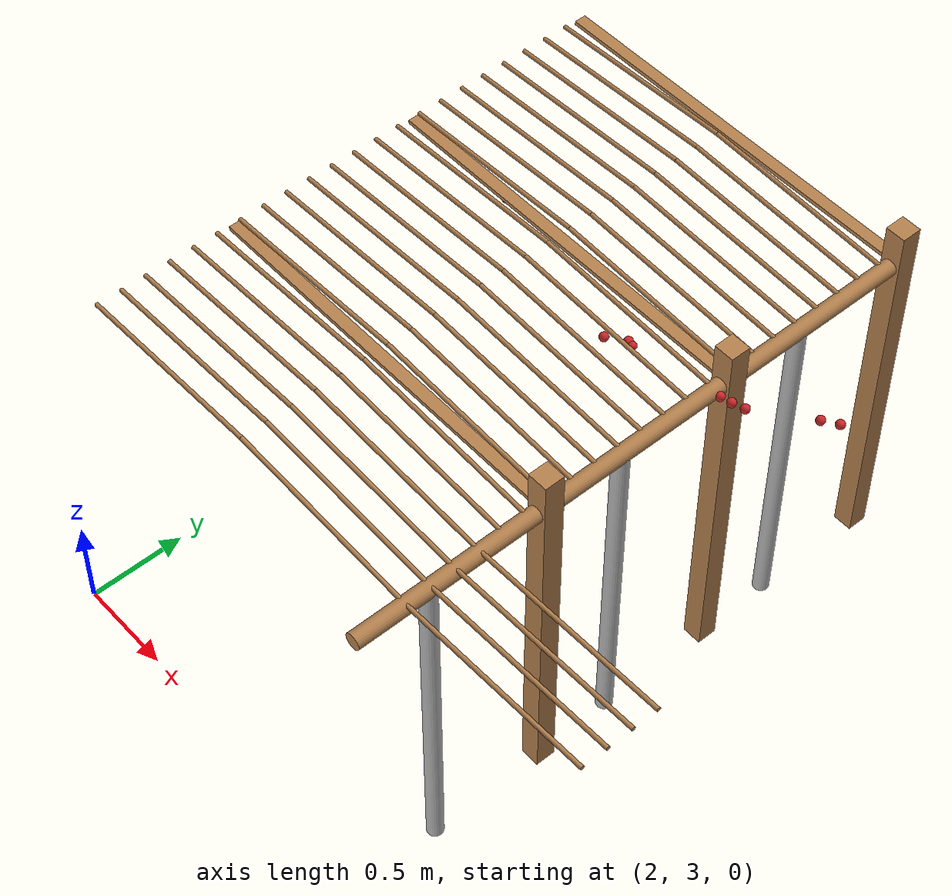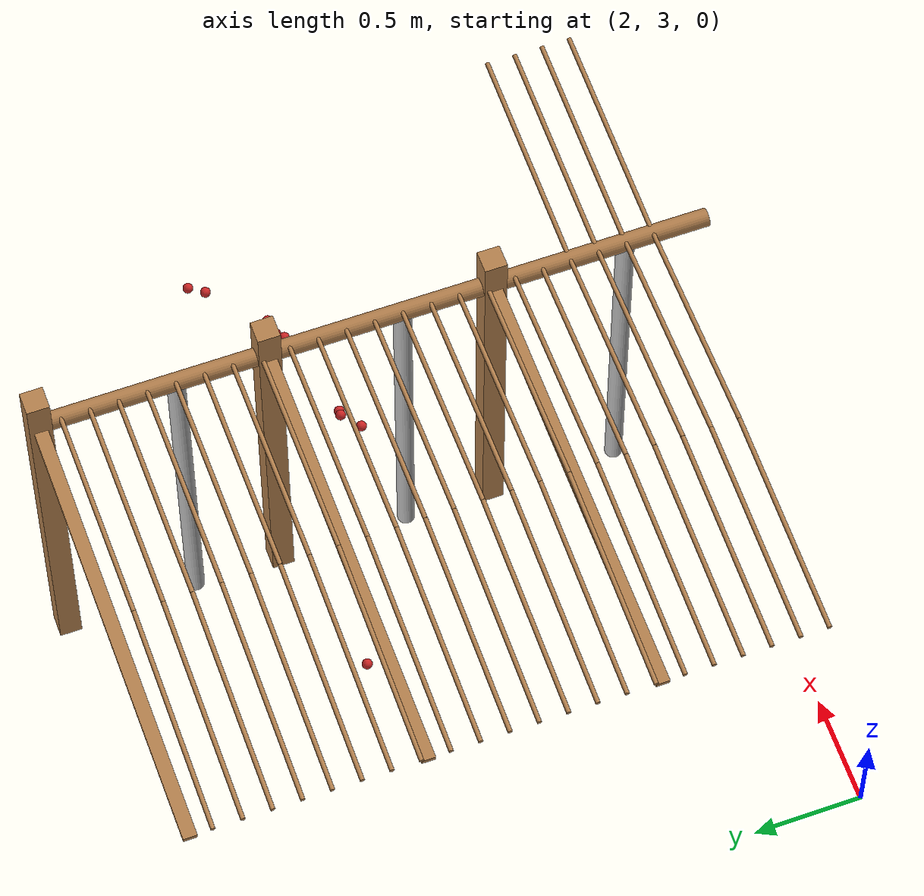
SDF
<sdf version="1.4">
 <model name="pergola">
  <include><name>post_18</name><pose>4.0 4.0 0 0 0 0</pose><uri>model://post</uri></include>
  <include><name>post_19</name><pose>4.0 5.0 0 0 0 0</pose><uri>model://post</uri></include>
  <include><name>post_20</name><pose>4.0 6.0 0 0 0 0</pose><uri>model://post</uri></include>
  <link name="beam_11">
   <pose>3.0 4.0 1.81 0 0 0</pose>
   <collision name="collision"><geometry><box><size>2.0 0.06 0.02</size></box></geometry></collision>
   <visual name="visual">
    <geometry><box><size>2.0 0.06 0.02</size></box></geometry>
    <material><script><name>Gazebo/Wood</name></script></material>
   </visual>
   <inertial>
    <mass>5</mass>
    <inertia>
     <ixx>0.0016666666666666668</ixx>
     <ixy>0.0</ixy>
     <ixz>0.0</ixz>
     <iyy>1.6681666666666664</iyy>
     <iyz>0.0</iyz>
     <izz>1.6668333333333332</izz>
    </inertia>
   </inertial>
  </link>
  <link name="beam_12">
   <pose>3.0 5.0 1.81 0 0 0</pose>
   <collision name="collision"><geometry><box><size>2.0 0.06 0.02</size></box></geometry></collision>
   <visual name="visual">
    <geometry><box><size>2.0 0.06 0.02</size></box></geometry>
    <material><script><name>Gazebo/Wood</name></script></material>
   </visual>
   <inertial>
    <mass>5</mass>
    <inertia>
     <ixx>0.0016666666666666668</ixx>
     <ixy>0.0</ixy>
     <ixz>0.0</ixz>
     <iyy>1.6681666666666664</iyy>
     <iyz>0.0</iyz>
     <izz>1.6668333333333332</izz>
    </inertia>
   </inertial>
  </link>
  <link name="beam_13">
   <pose>3.0 6.0 1.81 0 0 0</pose>
   <collision name="collision"><geometry><box><size>2.0 0.06 0.02</size></box></geometry></collision>
   <visual name="visual">
    <geometry><box><size>2.0 0.06 0.02</size></box></geometry>
    <material><script><name>Gazebo/Wood</name></script></material>
   </visual>
   <inertial>
    <mass>5</mass>
    <inertia>
     <ixx>0.0016666666666666668</ixx>
     <ixy>0.0</ixy>
     <ixz>0.0</ixz>
     <iyy>1.6681666666666664</iyy>
     <iyz>0.0</iyz>
     <izz>1.6668333333333332</izz>
    </inertia>
   </inertial>
  </link>
  <include><name>tree_15</name><pose>4.0 3.4 0 0 0 0</pose><uri>model://tree_trunk</uri></include>
  <include><name>tree_16</name><pose>4.0 4.4 0 0 0 0</pose><uri>model://tree_trunk</uri></include>
  <include><name>tree_17</name><pose>4.0 5.4 0 0 0 0</pose><uri>model://tree_trunk</uri></include>
  <link name="baseBranch_15">
   <pose>4.0 3.5 1.8 1.5707963267948966 0 0</pose>
   <collision name="collision">
    <geometry><cylinder><radius>0.04</radius><length>0.94</length></cylinder></geometry>
   </collision>
   <visual name="visual">
    <geometry><cylinder><radius>0.04</radius><length>0.94</length></cylinder></geometry>
    <material><script><name>Gazebo/WoodFloor</name></script></material>
   </visual>
   <inertial>
    <mass>10</mass>
    <inertia>
     <ixx>0.7403333333333334</ixx>
     <ixy>0.0</ixy>
     <ixz>0.0</ixz>
     <iyy>0.7403333333333334</iyy>
     <iyz>0.0</iyz>
     <izz>0.008</izz>
    </inertia>
   </inertial>
  </link>
  <link name="baseBranch_16">
   <pose>4.0 4.5 1.8 1.5707963267948966 0 0</pose>
   <collision name="collision">
    <geometry><cylinder><radius>0.04</radius><length>0.94</length></cylinder></geometry>
   </collision>
   <visual name="visual">
    <geometry><cylinder><radius>0.04</radius><length>0.94</length></cylinder></geometry>
    <material><script><name>Gazebo/WoodFloor</name></script></material>
   </visual>
   <inertial>
    <mass>10</mass>
    <inertia>
     <ixx>0.7403333333333334</ixx>
     <ixy>0.0</ixy>
     <ixz>0.0</ixz>
     <iyy>0.7403333333333334</iyy>
     <iyz>0.0</iyz>
     <izz>0.008</izz>
    </inertia>
   </inertial>
  </link>
  <link name="baseBranch_17">
   <pose>4.0 5.5 1.8 1.5707963267948966 0 0</pose>
   <collision name="collision">
    <geometry><cylinder><radius>0.04</radius><length>0.94</length></cylinder></geometry>
   </collision>
   <visual name="visual">
    <geometry><cylinder><radius>0.04</radius><length>0.94</length></cylinder></geometry>
    <material><script><name>Gazebo/WoodFloor</name></script></material>
   </visual>
   <inertial>
    <mass>10</mass>
    <inertia>
     <ixx>0.7403333333333334</ixx>
     <ixy>0.0</ixy>
     <ixz>0.0</ixz>
     <iyy>0.7403333333333334</iyy>
     <iyz>0.0</iyz>
     <izz>0.008</izz>
    </inertia>
   </inertial>
  </link>
  <link name="vine_148">
   <pose>2.5 3.28 1.85 0 1.5208379310729538 0</pose>
   <collision name="collision">
    <geometry><cylinder><radius>0.01</radius><length>1.0012492197250393</length></cylinder></geometry>
   </collision>
   <visual name="visual">
    <geometry><cylinder><radius>0.01</radius><length>1.0012492197250393</length></cylinder></geometry>
    <material><script><name>Gazebo/WoodFloor</name></script></material>
   </visual>
   <inertial>
    <mass>5</mass>
    <inertia>
     <ixx>0.41783333333333345</ixx>
     <ixy>0.0</ixy>
     <ixz>0.0</ixz>
     <iyy>0.41783333333333345</iyy>
     <iyz>0.0</iyz>
     <izz>0.00025</izz>
    </inertia>
   </inertial>
  </link>
  <link name="vine_149">
   <pose>3.5 3.28 1.85 0 -1.5208379310729538 0</pose>
   <collision name="collision">
    <geometry><cylinder><radius>0.01</radius><length>1.0012492197250393</length></cylinder></geometry>
   </collision>
   <visual name="visual">
    <geometry><cylinder><radius>0.01</radius><length>1.0012492197250393</length></cylinder></geometry>
    <material><script><name>Gazebo/WoodFloor</name></script></material>
   </visual>
   <inertial>
    <mass>5</mass>
    <inertia>
     <ixx>0.41783333333333345</ixx>
     <ixy>0.0</ixy>
     <ixz>0.0</ixz>
     <iyy>0.41783333333333345</iyy>
     <iyz>0.0</iyz>
     <izz>0.00025</izz>
    </inertia>
   </inertial>
  </link>
  <link name="vine_150">
   <pose>2.5 3.405 1.85 0 1.5208379310729538 0</pose>
   <collision name="collision">
    <geometry><cylinder><radius>0.01</radius><length>1.0012492197250393</length></cylinder></geometry>
   </collision>
   <visual name="visual">
    <geometry><cylinder><radius>0.01</radius><length>1.0012492197250393</length></cylinder></geometry>
    <material><script><name>Gazebo/WoodFloor</name></script></material>
   </visual>
   <inertial>
    <mass>5</mass>
    <inertia>
     <ixx>0.41783333333333345</ixx>
     <ixy>0.0</ixy>
     <ixz>0.0</ixz>
     <iyy>0.41783333333333345</iyy>
     <iyz>0.0</iyz>
     <izz>0.00025</izz>
    </inertia>
   </inertial>
  </link>
  <link name="vine_151">
   <pose>3.5 3.405 1.85 0 -1.5208379310729538 0</pose>
   <collision name="collision">
    <geometry><cylinder><radius>0.01</radius><length>1.0012492197250393</length></cylinder></geometry>
   </collision>
   <visual name="visual">
    <geometry><cylinder><radius>0.01</radius><length>1.0012492197250393</length></cylinder></geometry>
    <material><script><name>Gazebo/WoodFloor</name></script></material>
   </visual>
   <inertial>
    <mass>5</mass>
    <inertia>
     <ixx>0.41783333333333345</ixx>
     <ixy>0.0</ixy>
     <ixz>0.0</ixz>
     <iyy>0.41783333333333345</iyy>
     <iyz>0.0</iyz>
     <izz>0.00025</izz>
    </inertia>
   </inertial>
  </link>
  <link name="vine_152">
   <pose>2.5 3.53 1.85 0 1.5208379310729538 0</pose>
   <collision name="collision">
    <geometry><cylinder><radius>0.01</radius><length>1.0012492197250393</length></cylinder></geometry>
   </collision>
   <visual name="visual">
    <geometry><cylinder><radius>0.01</radius><length>1.0012492197250393</length></cylinder></geometry>
    <material><script><name>Gazebo/WoodFloor</name></script></material>
   </visual>
   <inertial>
    <mass>5</mass>
    <inertia>
     <ixx>0.41783333333333345</ixx>
     <ixy>0.0</ixy>
     <ixz>0.0</ixz>
     <iyy>0.41783333333333345</iyy>
     <iyz>0.0</iyz>
     <izz>0.00025</izz>
    </inertia>
   </inertial>
  </link>
  <link name="vine_153">
   <pose>3.5 3.53 1.85 0 -1.5208379310729538 0</pose>
   <collision name="collision">
    <geometry><cylinder><radius>0.01</radius><length>1.0012492197250393</length></cylinder></geometry>
   </collision>
   <visual name="visual">
    <geometry><cylinder><radius>0.01</radius><length>1.0012492197250393</length></cylinder></geometry>
    <material><script><name>Gazebo/WoodFloor</name></script></material>
   </visual>
   <inertial>
    <mass>5</mass>
    <inertia>
     <ixx>0.41783333333333345</ixx>
     <ixy>0.0</ixy>
     <ixz>0.0</ixz>
     <iyy>0.41783333333333345</iyy>
     <iyz>0.0</iyz>
     <izz>0.00025</izz>
    </inertia>
   </inertial>
  </link>
  <link name="vine_154">
   <pose>2.5 3.655 1.85 0 1.5208379310729538 0</pose>
   <collision name="collision">
    <geometry><cylinder><radius>0.01</radius><length>1.0012492197250393</length></cylinder></geometry>
   </collision>
   <visual name="visual">
    <geometry><cylinder><radius>0.01</radius><length>1.0012492197250393</length></cylinder></geometry>
    <material><script><name>Gazebo/WoodFloor</name></script></material>
   </visual>
   <inertial>
    <mass>5</mass>
    <inertia>
     <ixx>0.41783333333333345</ixx>
     <ixy>0.0</ixy>
     <ixz>0.0</ixz>
     <iyy>0.41783333333333345</iyy>
     <iyz>0.0</iyz>
     <izz>0.00025</izz>
    </inertia>
   </inertial>
  </link>
  <link name="vine_155">
   <pose>3.5 3.655 1.85 0 -1.5208379310729538 0</pose>
   <collision name="collision">
    <geometry><cylinder><radius>0.01</radius><length>1.0012492197250393</length></cylinder></geometry>
   </collision>
   <visual name="visual">
    <geometry><cylinder><radius>0.01</radius><length>1.0012492197250393</length></cylinder></geometry>
    <material><script><name>Gazebo/WoodFloor</name></script></material>
   </visual>
   <inertial>
    <mass>5</mass>
    <inertia>
     <ixx>0.41783333333333345</ixx>
     <ixy>0.0</ixy>
     <ixz>0.0</ixz>
     <iyy>0.41783333333333345</iyy>
     <iyz>0.0</iyz>
     <izz>0.00025</izz>
    </inertia>
   </inertial>
  </link>
  <link name="vine_156">
   <pose>2.5 3.78 1.85 0 1.5208379310729538 0</pose>
   <collision name="collision">
    <geometry><cylinder><radius>0.01</radius><length>1.0012492197250393</length></cylinder></geometry>
   </collision>
   <visual name="visual">
    <geometry><cylinder><radius>0.01</radius><length>1.0012492197250393</length></cylinder></geometry>
    <material><script><name>Gazebo/WoodFloor</name></script></material>
   </visual>
   <inertial>
    <mass>5</mass>
    <inertia>
     <ixx>0.41783333333333345</ixx>
     <ixy>0.0</ixy>
     <ixz>0.0</ixz>
     <iyy>0.41783333333333345</iyy>
     <iyz>0.0</iyz>
     <izz>0.00025</izz>
    </inertia>
   </inertial>
  </link>
  <link name="vine_157">
   <pose>3.5 3.78 1.85 0 -1.5208379310729538 0</pose>
   <collision name="collision">
    <geometry><cylinder><radius>0.01</radius><length>1.0012492197250393</length></cylinder></geometry>
   </collision>
   <visual name="visual">
    <geometry><cylinder><radius>0.01</radius><length>1.0012492197250393</length></cylinder></geometry>
    <material><script><name>Gazebo/WoodFloor</name></script></material>
   </visual>
   <inertial>
    <mass>5</mass>
    <inertia>
     <ixx>0.41783333333333345</ixx>
     <ixy>0.0</ixy>
     <ixz>0.0</ixz>
     <iyy>0.41783333333333345</iyy>
     <iyz>0.0</iyz>
     <izz>0.00025</izz>
    </inertia>
   </inertial>
  </link>
  <link name="vine_158">
   <pose>2.5 3.905 1.85 0 1.5208379310729538 0</pose>
   <collision name="collision">
    <geometry><cylinder><radius>0.01</radius><length>1.0012492197250393</length></cylinder></geometry>
   </collision>
   <visual name="visual">
    <geometry><cylinder><radius>0.01</radius><length>1.0012492197250393</length></cylinder></geometry>
    <material><script><name>Gazebo/WoodFloor</name></script></material>
   </visual>
   <inertial>
    <mass>5</mass>
    <inertia>
     <ixx>0.41783333333333345</ixx>
     <ixy>0.0</ixy>
     <ixz>0.0</ixz>
     <iyy>0.41783333333333345</iyy>
     <iyz>0.0</iyz>
     <izz>0.00025</izz>
    </inertia>
   </inertial>
  </link>
  <link name="vine_159">
   <pose>3.5 3.905 1.85 0 -1.5208379310729538 0</pose>
   <collision name="collision">
    <geometry><cylinder><radius>0.01</radius><length>1.0012492197250393</length></cylinder></geometry>
   </collision>
   <visual name="visual">
    <geometry><cylinder><radius>0.01</radius><length>1.0012492197250393</length></cylinder></geometry>
    <material><script><name>Gazebo/WoodFloor</name></script></material>
   </visual>
   <inertial>
    <mass>5</mass>
    <inertia>
     <ixx>0.41783333333333345</ixx>
     <ixy>0.0</ixy>
     <ixz>0.0</ixz>
     <iyy>0.41783333333333345</iyy>
     <iyz>0.0</iyz>
     <izz>0.00025</izz>
    </inertia>
   </inertial>
  </link>
  <link name="vine_160">
   <pose>2.5 4.03 1.85 0 1.5208379310729538 0</pose>
   <collision name="collision">
    <geometry><cylinder><radius>0.01</radius><length>1.0012492197250393</length></cylinder></geometry>
   </collision>
   <visual name="visual">
    <geometry><cylinder><radius>0.01</radius><length>1.0012492197250393</length></cylinder></geometry>
    <material><script><name>Gazebo/WoodFloor</name></script></material>
   </visual>
   <inertial>
    <mass>5</mass>
    <inertia>
     <ixx>0.41783333333333345</ixx>
     <ixy>0.0</ixy>
     <ixz>0.0</ixz>
     <iyy>0.41783333333333345</iyy>
     <iyz>0.0</iyz>
     <izz>0.00025</izz>
    </inertia>
   </inertial>
  </link>
  <link name="vine_161">
   <pose>3.5 4.03 1.85 0 -1.5208379310729538 0</pose>
   <collision name="collision">
    <geometry><cylinder><radius>0.01</radius><length>1.0012492197250393</length></cylinder></geometry>
   </collision>
   <visual name="visual">
    <geometry><cylinder><radius>0.01</radius><length>1.0012492197250393</length></cylinder></geometry>
    <material><script><name>Gazebo/WoodFloor</name></script></material>
   </visual>
   <inertial>
    <mass>5</mass>
    <inertia>
     <ixx>0.41783333333333345</ixx>
     <ixy>0.0</ixy>
     <ixz>0.0</ixz>
     <iyy>0.41783333333333345</iyy>
     <iyz>0.0</iyz>
     <izz>0.00025</izz>
    </inertia>
   </inertial>
  </link>
  <link name="vine_162">
   <pose>2.5 4.155 1.85 0 1.5208379310729538 0</pose>
   <collision name="collision">
    <geometry><cylinder><radius>0.01</radius><length>1.0012492197250393</length></cylinder></geometry>
   </collision>
   <visual name="visual">
    <geometry><cylinder><radius>0.01</radius><length>1.0012492197250393</length></cylinder></geometry>
    <material><script><name>Gazebo/WoodFloor</name></script></material>
   </visual>
   <inertial>
    <mass>5</mass>
    <inertia>
     <ixx>0.41783333333333345</ixx>
     <ixy>0.0</ixy>
     <ixz>0.0</ixz>
     <iyy>0.41783333333333345</iyy>
     <iyz>0.0</iyz>
     <izz>0.00025</izz>
    </inertia>
   </inertial>
  </link>
  <link name="vine_163">
   <pose>3.5 4.155 1.85 0 -1.5208379310729538 0</pose>
   <collision name="collision">
    <geometry><cylinder><radius>0.01</radius><length>1.0012492197250393</length></cylinder></geometry>
   </collision>
   <visual name="visual">
    <geometry><cylinder><radius>0.01</radius><length>1.0012492197250393</length></cylinder></geometry>
    <material><script><name>Gazebo/WoodFloor</name></script></material>
   </visual>
   <inertial>
    <mass>5</mass>
    <inertia>
     <ixx>0.41783333333333345</ixx>
     <ixy>0.0</ixy>
     <ixz>0.0</ixz>
     <iyy>0.41783333333333345</iyy>
     <iyz>0.0</iyz>
     <izz>0.00025</izz>
    </inertia>
   </inertial>
  </link>
  <link name="vine_164">
   <pose>2.5 4.28 1.85 0 1.5208379310729538 0</pose>
   <collision name="collision">
    <geometry><cylinder><radius>0.01</radius><length>1.0012492197250393</length></cylinder></geometry>
   </collision>
   <visual name="visual">
    <geometry><cylinder><radius>0.01</radius><length>1.0012492197250393</length></cylinder></geometry>
    <material><script><name>Gazebo/WoodFloor</name></script></material>
   </visual>
   <inertial>
    <mass>5</mass>
    <inertia>
     <ixx>0.41783333333333345</ixx>
     <ixy>0.0</ixy>
     <ixz>0.0</ixz>
     <iyy>0.41783333333333345</iyy>
     <iyz>0.0</iyz>
     <izz>0.00025</izz>
    </inertia>
   </inertial>
  </link>
  <link name="vine_165">
   <pose>3.5 4.28 1.85 0 -1.5208379310729538 0</pose>
   <collision name="collision">
    <geometry><cylinder><radius>0.01</radius><length>1.0012492197250393</length></cylinder></geometry>
   </collision>
   <visual name="visual">
    <geometry><cylinder><radius>0.01</radius><length>1.0012492197250393</length></cylinder></geometry>
    <material><script><name>Gazebo/WoodFloor</name></script></material>
   </visual>
   <inertial>
    <mass>5</mass>
    <inertia>
     <ixx>0.41783333333333345</ixx>
     <ixy>0.0</ixy>
     <ixz>0.0</ixz>
     <iyy>0.41783333333333345</iyy>
     <iyz>0.0</iyz>
     <izz>0.00025</izz>
    </inertia>
   </inertial>
  </link>
  <link name="vine_166">
   <pose>2.5 4.405 1.85 0 1.5208379310729538 0</pose>
   <collision name="collision">
    <geometry><cylinder><radius>0.01</radius><length>1.0012492197250393</length></cylinder></geometry>
   </collision>
   <visual name="visual">
    <geometry><cylinder><radius>0.01</radius><length>1.0012492197250393</length></cylinder></geometry>
    <material><script><name>Gazebo/WoodFloor</name></script></material>
   </visual>
   <inertial>
    <mass>5</mass>
    <inertia>
     <ixx>0.41783333333333345</ixx>
     <ixy>0.0</ixy>
     <ixz>0.0</ixz>
     <iyy>0.41783333333333345</iyy>
     <iyz>0.0</iyz>
     <izz>0.00025</izz>
    </inertia>
   </inertial>
  </link>
  <link name="vine_167">
   <pose>3.5 4.405 1.85 0 -1.5208379310729538 0</pose>
   <collision name="collision">
    <geometry><cylinder><radius>0.01</radius><length>1.0012492197250393</length></cylinder></geometry>
   </collision>
   <visual name="visual">
    <geometry><cylinder><radius>0.01</radius><length>1.0012492197250393</length></cylinder></geometry>
    <material><script><name>Gazebo/WoodFloor</name></script></material>
   </visual>
   <inertial>
    <mass>5</mass>
    <inertia>
     <ixx>0.41783333333333345</ixx>
     <ixy>0.0</ixy>
     <ixz>0.0</ixz>
     <iyy>0.41783333333333345</iyy>
     <iyz>0.0</iyz>
     <izz>0.00025</izz>
    </inertia>
   </inertial>
  </link>
  <link name="vine_168">
   <pose>2.5 4.53 1.85 0 1.5208379310729538 0</pose>
   <collision name="collision">
    <geometry><cylinder><radius>0.01</radius><length>1.0012492197250393</length></cylinder></geometry>
   </collision>
   <visual name="visual">
    <geometry><cylinder><radius>0.01</radius><length>1.0012492197250393</length></cylinder></geometry>
    <material><script><name>Gazebo/WoodFloor</name></script></material>
   </visual>
   <inertial>
    <mass>5</mass>
    <inertia>
     <ixx>0.41783333333333345</ixx>
     <ixy>0.0</ixy>
     <ixz>0.0</ixz>
     <iyy>0.41783333333333345</iyy>
     <iyz>0.0</iyz>
     <izz>0.00025</izz>
    </inertia>
   </inertial>
  </link>
  <link name="vine_169">
   <pose>3.5 4.53 1.85 0 -1.5208379310729538 0</pose>
   <collision name="collision">
    <geometry><cylinder><radius>0.01</radius><length>1.0012492197250393</length></cylinder></geometry>
   </collision>
   <visual name="visual">
    <geometry><cylinder><radius>0.01</radius><length>1.0012492197250393</length></cylinder></geometry>
    <material><script><name>Gazebo/WoodFloor</name></script></material>
   </visual>
   <inertial>
    <mass>5</mass>
    <inertia>
     <ixx>0.41783333333333345</ixx>
     <ixy>0.0</ixy>
     <ixz>0.0</ixz>
     <iyy>0.41783333333333345</iyy>
     <iyz>0.0</iyz>
     <izz>0.00025</izz>
    </inertia>
   </inertial>
  </link>
  <link name="vine_170">
   <pose>2.5 4.655 1.85 0 1.5208379310729538 0</pose>
   <collision name="collision">
    <geometry><cylinder><radius>0.01</radius><length>1.0012492197250393</length></cylinder></geometry>
   </collision>
   <visual name="visual">
    <geometry><cylinder><radius>0.01</radius><length>1.0012492197250393</length></cylinder></geometry>
    <material><script><name>Gazebo/WoodFloor</name></script></material>
   </visual>
   <inertial>
    <mass>5</mass>
    <inertia>
     <ixx>0.41783333333333345</ixx>
     <ixy>0.0</ixy>
     <ixz>0.0</ixz>
     <iyy>0.41783333333333345</iyy>
     <iyz>0.0</iyz>
     <izz>0.00025</izz>
    </inertia>
   </inertial>
  </link>
  <link name="vine_171">
   <pose>3.5 4.655 1.85 0 -1.5208379310729538 0</pose>
   <collision name="collision">
    <geometry><cylinder><radius>0.01</radius><length>1.0012492197250393</length></cylinder></geometry>
   </collision>
   <visual name="visual">
    <geometry><cylinder><radius>0.01</radius><length>1.0012492197250393</length></cylinder></geometry>
    <material><script><name>Gazebo/WoodFloor</name></script></material>
   </visual>
   <inertial>
    <mass>5</mass>
    <inertia>
     <ixx>0.41783333333333345</ixx>
     <ixy>0.0</ixy>
     <ixz>0.0</ixz>
     <iyy>0.41783333333333345</iyy>
     <iyz>0.0</iyz>
     <izz>0.00025</izz>
    </inertia>
   </inertial>
  </link>
  <link name="vine_172">
   <pose>2.5 4.78 1.85 0 1.5208379310729538 0</pose>
   <collision name="collision">
    <geometry><cylinder><radius>0.01</radius><length>1.0012492197250393</length></cylinder></geometry>
   </collision>
   <visual name="visual">
    <geometry><cylinder><radius>0.01</radius><length>1.0012492197250393</length></cylinder></geometry>
    <material><script><name>Gazebo/WoodFloor</name></script></material>
   </visual>
   <inertial>
    <mass>5</mass>
    <inertia>
     <ixx>0.41783333333333345</ixx>
     <ixy>0.0</ixy>
     <ixz>0.0</ixz>
     <iyy>0.41783333333333345</iyy>
     <iyz>0.0</iyz>
     <izz>0.00025</izz>
    </inertia>
   </inertial>
  </link>
  <link name="vine_173">
   <pose>3.5 4.78 1.85 0 -1.5208379310729538 0</pose>
   <collision name="collision">
    <geometry><cylinder><radius>0.01</radius><length>1.0012492197250393</length></cylinder></geometry>
   </collision>
   <visual name="visual">
    <geometry><cylinder><radius>0.01</radius><length>1.0012492197250393</length></cylinder></geometry>
    <material><script><name>Gazebo/WoodFloor</name></script></material>
   </visual>
   <inertial>
    <mass>5</mass>
    <inertia>
     <ixx>0.41783333333333345</ixx>
     <ixy>0.0</ixy>
     <ixz>0.0</ixz>
     <iyy>0.41783333333333345</iyy>
     <iyz>0.0</iyz>
     <izz>0.00025</izz>
    </inertia>
   </inertial>
  </link>
  <link name="vine_174">
   <pose>2.5 4.905 1.85 0 1.5208379310729538 0</pose>
   <collision name="collision">
    <geometry><cylinder><radius>0.01</radius><length>1.0012492197250393</length></cylinder></geometry>
   </collision>
   <visual name="visual">
    <geometry><cylinder><radius>0.01</radius><length>1.0012492197250393</length></cylinder></geometry>
    <material><script><name>Gazebo/WoodFloor</name></script></material>
   </visual>
   <inertial>
    <mass>5</mass>
    <inertia>
     <ixx>0.41783333333333345</ixx>
     <ixy>0.0</ixy>
     <ixz>0.0</ixz>
     <iyy>0.41783333333333345</iyy>
     <iyz>0.0</iyz>
     <izz>0.00025</izz>
    </inertia>
   </inertial>
  </link>
  <link name="vine_175">
   <pose>3.5 4.905 1.85 0 -1.5208379310729538 0</pose>
   <collision name="collision">
    <geometry><cylinder><radius>0.01</radius><length>1.0012492197250393</length></cylinder></geometry>
   </collision>
   <visual name="visual">
    <geometry><cylinder><radius>0.01</radius><length>1.0012492197250393</length></cylinder></geometry>
    <material><script><name>Gazebo/WoodFloor</name></script></material>
   </visual>
   <inertial>
    <mass>5</mass>
    <inertia>
     <ixx>0.41783333333333345</ixx>
     <ixy>0.0</ixy>
     <ixz>0.0</ixz>
     <iyy>0.41783333333333345</iyy>
     <iyz>0.0</iyz>
     <izz>0.00025</izz>
    </inertia>
   </inertial>
  </link>
  <link name="vine_176">
   <pose>2.5 5.03 1.85 0 1.5208379310729538 0</pose>
   <collision name="collision">
    <geometry><cylinder><radius>0.01</radius><length>1.0012492197250393</length></cylinder></geometry>
   </collision>
   <visual name="visual">
    <geometry><cylinder><radius>0.01</radius><length>1.0012492197250393</length></cylinder></geometry>
    <material><script><name>Gazebo/WoodFloor</name></script></material>
   </visual>
   <inertial>
    <mass>5</mass>
    <inertia>
     <ixx>0.41783333333333345</ixx>
     <ixy>0.0</ixy>
     <ixz>0.0</ixz>
     <iyy>0.41783333333333345</iyy>
     <iyz>0.0</iyz>
     <izz>0.00025</izz>
    </inertia>
   </inertial>
  </link>
  <link name="vine_177">
   <pose>3.5 5.03 1.85 0 -1.5208379310729538 0</pose>
   <collision name="collision">
    <geometry><cylinder><radius>0.01</radius><length>1.0012492197250393</length></cylinder></geometry>
   </collision>
   <visual name="visual">
    <geometry><cylinder><radius>0.01</radius><length>1.0012492197250393</length></cylinder></geometry>
    <material><script><name>Gazebo/WoodFloor</name></script></material>
   </visual>
   <inertial>
    <mass>5</mass>
    <inertia>
     <ixx>0.41783333333333345</ixx>
     <ixy>0.0</ixy>
     <ixz>0.0</ixz>
     <iyy>0.41783333333333345</iyy>
     <iyz>0.0</iyz>
     <izz>0.00025</izz>
    </inertia>
   </inertial>
  </link>
  <link name="vine_178">
   <pose>2.5 5.155 1.85 0 1.5208379310729538 0</pose>
   <collision name="collision">
    <geometry><cylinder><radius>0.01</radius><length>1.0012492197250393</length></cylinder></geometry>
   </collision>
   <visual name="visual">
    <geometry><cylinder><radius>0.01</radius><length>1.0012492197250393</length></cylinder></geometry>
    <material><script><name>Gazebo/WoodFloor</name></script></material>
   </visual>
   <inertial>
    <mass>5</mass>
    <inertia>
     <ixx>0.41783333333333345</ixx>
     <ixy>0.0</ixy>
     <ixz>0.0</ixz>
     <iyy>0.41783333333333345</iyy>
     <iyz>0.0</iyz>
     <izz>0.00025</izz>
    </inertia>
   </inertial>
  </link>
  <link name="vine_179">
   <pose>3.5 5.155 1.85 0 -1.5208379310729538 0</pose>
   <collision name="collision">
    <geometry><cylinder><radius>0.01</radius><length>1.0012492197250393</length></cylinder></geometry>
   </collision>
   <visual name="visual">
    <geometry><cylinder><radius>0.01</radius><length>1.0012492197250393</length></cylinder></geometry>
    <material><script><name>Gazebo/WoodFloor</name></script></material>
   </visual>
   <inertial>
    <mass>5</mass>
    <inertia>
     <ixx>0.41783333333333345</ixx>
     <ixy>0.0</ixy>
     <ixz>0.0</ixz>
     <iyy>0.41783333333333345</iyy>
     <iyz>0.0</iyz>
     <izz>0.00025</izz>
    </inertia>
   </inertial>
  </link>
  <link name="vine_180">
   <pose>2.5 5.28 1.85 0 1.5208379310729538 0</pose>
   <collision name="collision">
    <geometry><cylinder><radius>0.01</radius><length>1.0012492197250393</length></cylinder></geometry>
   </collision>
   <visual name="visual">
    <geometry><cylinder><radius>0.01</radius><length>1.0012492197250393</length></cylinder></geometry>
    <material><script><name>Gazebo/WoodFloor</name></script></material>
   </visual>
   <inertial>
    <mass>5</mass>
    <inertia>
     <ixx>0.41783333333333345</ixx>
     <ixy>0.0</ixy>
     <ixz>0.0</ixz>
     <iyy>0.41783333333333345</iyy>
     <iyz>0.0</iyz>
     <izz>0.00025</izz>
    </inertia>
   </inertial>
  </link>
  <link name="vine_181">
   <pose>3.5 5.28 1.85 0 -1.5208379310729538 0</pose>
   <collision name="collision">
    <geometry><cylinder><radius>0.01</radius><length>1.0012492197250393</length></cylinder></geometry>
   </collision>
   <visual name="visual">
    <geometry><cylinder><radius>0.01</radius><length>1.0012492197250393</length></cylinder></geometry>
    <material><script><name>Gazebo/WoodFloor</name></script></material>
   </visual>
   <inertial>
    <mass>5</mass>
    <inertia>
     <ixx>0.41783333333333345</ixx>
     <ixy>0.0</ixy>
     <ixz>0.0</ixz>
     <iyy>0.41783333333333345</iyy>
     <iyz>0.0</iyz>
     <izz>0.00025</izz>
    </inertia>
   </inertial>
  </link>
  <link name="vine_182">
   <pose>2.5 5.405 1.85 0 1.5208379310729538 0</pose>
   <collision name="collision">
    <geometry><cylinder><radius>0.01</radius><length>1.0012492197250393</length></cylinder></geometry>
   </collision>
   <visual name="visual">
    <geometry><cylinder><radius>0.01</radius><length>1.0012492197250393</length></cylinder></geometry>
    <material><script><name>Gazebo/WoodFloor</name></script></material>
   </visual>
   <inertial>
    <mass>5</mass>
    <inertia>
     <ixx>0.41783333333333345</ixx>
     <ixy>0.0</ixy>
     <ixz>0.0</ixz>
     <iyy>0.41783333333333345</iyy>
     <iyz>0.0</iyz>
     <izz>0.00025</izz>
    </inertia>
   </inertial>
  </link>
  <link name="vine_183">
   <pose>3.5 5.405 1.85 0 -1.5208379310729538 0</pose>
   <collision name="collision">
    <geometry><cylinder><radius>0.01</radius><length>1.0012492197250393</length></cylinder></geometry>
   </collision>
   <visual name="visual">
    <geometry><cylinder><radius>0.01</radius><length>1.0012492197250393</length></cylinder></geometry>
    <material><script><name>Gazebo/WoodFloor</name></script></material>
   </visual>
   <inertial>
    <mass>5</mass>
    <inertia>
     <ixx>0.41783333333333345</ixx>
     <ixy>0.0</ixy>
     <ixz>0.0</ixz>
     <iyy>0.41783333333333345</iyy>
     <iyz>0.0</iyz>
     <izz>0.00025</izz>
    </inertia>
   </inertial>
  </link>
  <link name="vine_184">
   <pose>2.5 5.53 1.85 0 1.5208379310729538 0</pose>
   <collision name="collision">
    <geometry><cylinder><radius>0.01</radius><length>1.0012492197250393</length></cylinder></geometry>
   </collision>
   <visual name="visual">
    <geometry><cylinder><radius>0.01</radius><length>1.0012492197250393</length></cylinder></geometry>
    <material><script><name>Gazebo/WoodFloor</name></script></material>
   </visual>
   <inertial>
    <mass>5</mass>
    <inertia>
     <ixx>0.41783333333333345</ixx>
     <ixy>0.0</ixy>
     <ixz>0.0</ixz>
     <iyy>0.41783333333333345</iyy>
     <iyz>0.0</iyz>
     <izz>0.00025</izz>
    </inertia>
   </inertial>
  </link>
  <link name="vine_185">
   <pose>3.5 5.53 1.85 0 -1.5208379310729538 0</pose>
   <collision name="collision">
    <geometry><cylinder><radius>0.01</radius><length>1.0012492197250393</length></cylinder></geometry>
   </collision>
   <visual name="visual">
    <geometry><cylinder><radius>0.01</radius><length>1.0012492197250393</length></cylinder></geometry>
    <material><script><name>Gazebo/WoodFloor</name></script></material>
   </visual>
   <inertial>
    <mass>5</mass>
    <inertia>
     <ixx>0.41783333333333345</ixx>
     <ixy>0.0</ixy>
     <ixz>0.0</ixz>
     <iyy>0.41783333333333345</iyy>
     <iyz>0.0</iyz>
     <izz>0.00025</izz>
    </inertia>
   </inertial>
  </link>
  <link name="vine_186">
   <pose>2.5 5.655 1.85 0 1.5208379310729538 0</pose>
   <collision name="collision">
    <geometry><cylinder><radius>0.01</radius><length>1.0012492197250393</length></cylinder></geometry>
   </collision>
   <visual name="visual">
    <geometry><cylinder><radius>0.01</radius><length>1.0012492197250393</length></cylinder></geometry>
    <material><script><name>Gazebo/WoodFloor</name></script></material>
   </visual>
   <inertial>
    <mass>5</mass>
    <inertia>
     <ixx>0.41783333333333345</ixx>
     <ixy>0.0</ixy>
     <ixz>0.0</ixz>
     <iyy>0.41783333333333345</iyy>
     <iyz>0.0</iyz>
     <izz>0.00025</izz>
    </inertia>
   </inertial>
  </link>
  <link name="vine_187">
   <pose>3.5 5.655 1.85 0 -1.5208379310729538 0</pose>
   <collision name="collision">
    <geometry><cylinder><radius>0.01</radius><length>1.0012492197250393</length></cylinder></geometry>
   </collision>
   <visual name="visual">
    <geometry><cylinder><radius>0.01</radius><length>1.0012492197250393</length></cylinder></geometry>
    <material><script><name>Gazebo/WoodFloor</name></script></material>
   </visual>
   <inertial>
    <mass>5</mass>
    <inertia>
     <ixx>0.41783333333333345</ixx>
     <ixy>0.0</ixy>
     <ixz>0.0</ixz>
     <iyy>0.41783333333333345</iyy>
     <iyz>0.0</iyz>
     <izz>0.00025</izz>
    </inertia>
   </inertial>
  </link>
  <link name="vine_188">
   <pose>2.5 5.78 1.85 0 1.5208379310729538 0</pose>
   <collision name="collision">
    <geometry><cylinder><radius>0.01</radius><length>1.0012492197250393</length></cylinder></geometry>
   </collision>
   <visual name="visual">
    <geometry><cylinder><radius>0.01</radius><length>1.0012492197250393</length></cylinder></geometry>
    <material><script><name>Gazebo/WoodFloor</name></script></material>
   </visual>
   <inertial>
    <mass>5</mass>
    <inertia>
     <ixx>0.41783333333333345</ixx>
     <ixy>0.0</ixy>
     <ixz>0.0</ixz>
     <iyy>0.41783333333333345</iyy>
     <iyz>0.0</iyz>
     <izz>0.00025</izz>
    </inertia>
   </inertial>
  </link>
  <link name="vine_189">
   <pose>3.5 5.78 1.85 0 -1.5208379310729538 0</pose>
   <collision name="collision">
    <geometry><cylinder><radius>0.01</radius><length>1.0012492197250393</length></cylinder></geometry>
   </collision>
   <visual name="visual">
    <geometry><cylinder><radius>0.01</radius><length>1.0012492197250393</length></cylinder></geometry>
    <material><script><name>Gazebo/WoodFloor</name></script></material>
   </visual>
   <inertial>
    <mass>5</mass>
    <inertia>
     <ixx>0.41783333333333345</ixx>
     <ixy>0.0</ixy>
     <ixz>0.0</ixz>
     <iyy>0.41783333333333345</iyy>
     <iyz>0.0</iyz>
     <izz>0.00025</izz>
    </inertia>
   </inertial>
  </link>
  <link name="vine_190">
   <pose>2.5 5.905 1.85 0 1.5208379310729538 0</pose>
   <collision name="collision">
    <geometry><cylinder><radius>0.01</radius><length>1.0012492197250393</length></cylinder></geometry>
   </collision>
   <visual name="visual">
    <geometry><cylinder><radius>0.01</radius><length>1.0012492197250393</length></cylinder></geometry>
    <material><script><name>Gazebo/WoodFloor</name></script></material>
   </visual>
   <inertial>
    <mass>5</mass>
    <inertia>
     <ixx>0.41783333333333345</ixx>
     <ixy>0.0</ixy>
     <ixz>0.0</ixz>
     <iyy>0.41783333333333345</iyy>
     <iyz>0.0</iyz>
     <izz>0.00025</izz>
    </inertia>
   </inertial>
  </link>
  <link name="vine_191">
   <pose>3.5 5.905 1.85 0 -1.5208379310729538 0</pose>
   <collision name="collision">
    <geometry><cylinder><radius>0.01</radius><length>1.0012492197250393</length></cylinder></geometry>
   </collision>
   <visual name="visual">
    <geometry><cylinder><radius>0.01</radius><length>1.0012492197250393</length></cylinder></geometry>
    <material><script><name>Gazebo/WoodFloor</name></script></material>
   </visual>
   <inertial>
    <mass>5</mass>
    <inertia>
     <ixx>0.41783333333333345</ixx>
     <ixy>0.0</ixy>
     <ixz>0.0</ixz>
     <iyy>0.41783333333333345</iyy>
     <iyz>0.0</iyz>
     <izz>0.00025</izz>
    </inertia>
   </inertial>
  </link>
  <link name="vine_244">
   <pose>4.5 3.28 1.85 0 1.5208379310729538 0</pose>
   <collision name="collision">
    <geometry><cylinder><radius>0.01</radius><length>1.0012492197250393</length></cylinder></geometry>
   </collision>
   <visual name="visual">
    <geometry><cylinder><radius>0.01</radius><length>1.0012492197250393</length></cylinder></geometry>
    <material><script><name>Gazebo/WoodFloor</name></script></material>
   </visual>
   <inertial>
    <mass>5</mass>
    <inertia>
     <ixx>0.41783333333333345</ixx>
     <ixy>0.0</ixy>
     <ixz>0.0</ixz>
     <iyy>0.41783333333333345</iyy>
     <iyz>0.0</iyz>
     <izz>0.00025</izz>
    </inertia>
   </inertial>
  </link>
  <link name="vine_246">
   <pose>4.5 3.405 1.85 0 1.5208379310729538 0</pose>
   <collision name="collision">
    <geometry><cylinder><radius>0.01</radius><length>1.0012492197250393</length></cylinder></geometry>
   </collision>
   <visual name="visual">
    <geometry><cylinder><radius>0.01</radius><length>1.0012492197250393</length></cylinder></geometry>
    <material><script><name>Gazebo/WoodFloor</name></script></material>
   </visual>
   <inertial>
    <mass>5</mass>
    <inertia>
     <ixx>0.41783333333333345</ixx>
     <ixy>0.0</ixy>
     <ixz>0.0</ixz>
     <iyy>0.41783333333333345</iyy>
     <iyz>0.0</iyz>
     <izz>0.00025</izz>
    </inertia>
   </inertial>
  </link>
  <link name="vine_248">
   <pose>4.5 3.53 1.85 0 1.5208379310729538 0</pose>
   <collision name="collision">
    <geometry><cylinder><radius>0.01</radius><length>1.0012492197250393</length></cylinder></geometry>
   </collision>
   <visual name="visual">
    <geometry><cylinder><radius>0.01</radius><length>1.0012492197250393</length></cylinder></geometry>
    <material><script><name>Gazebo/WoodFloor</name></script></material>
   </visual>
   <inertial>
    <mass>5</mass>
    <inertia>
     <ixx>0.41783333333333345</ixx>
     <ixy>0.0</ixy>
     <ixz>0.0</ixz>
     <iyy>0.41783333333333345</iyy>
     <iyz>0.0</iyz>
     <izz>0.00025</izz>
    </inertia>
   </inertial>
  </link>
  <link name="vine_250">
   <pose>4.5 3.655 1.85 0 1.5208379310729538 0</pose>
   <collision name="collision">
    <geometry><cylinder><radius>0.01</radius><length>1.0012492197250393</length></cylinder></geometry>
   </collision>
   <visual name="visual">
    <geometry><cylinder><radius>0.01</radius><length>1.0012492197250393</length></cylinder></geometry>
    <material><script><name>Gazebo/WoodFloor</name></script></material>
   </visual>
   <inertial>
    <mass>5</mass>
    <inertia>
     <ixx>0.41783333333333345</ixx>
     <ixy>0.0</ixy>
     <ixz>0.0</ixz>
     <iyy>0.41783333333333345</iyy>
     <iyz>0.0</iyz>
     <izz>0.00025</izz>
    </inertia>
   </inertial>
  </link>
  <link name="fruit_5">
   <pose>4.046059848411185 4.90620918717891 1.8047949036322979 0 0 0</pose>
   <collision name="fruit_collision_5"><geometry><sphere><radius>0.022</radius></sphere></geometry></collision>
   <visual name="visual">
    <geometry><sphere><radius>0.022</radius></sphere></geometry>
    <material><script><name>Gazebo/Red</name></script></material>
   </visual>
   <inertial>
    <mass>0.05</mass>
    <inertia>
     <ixx>9.679999999999999e-06</ixx>
     <ixy>0.0</ixy>
     <ixz>0.0</ixz>
     <iyy>9.679999999999999e-06</iyy>
     <iyz>0.0</iyz>
     <izz>9.679999999999999e-06</izz>
    </inertia>
   </inertial>
   <sensor name="fruit_contact_5" type="contact">
    <contact><collision>fruit_collision_5</collision></contact>
   </sensor>
  </link>
  <link name="fruit_6">
   <pose>4.384298361491378 5.14270613405168 1.7747151209061705 0 0 0</pose>
   <collision name="fruit_collision_6"><geometry><sphere><radius>0.022</radius></sphere></geometry></collision>
   <visual name="visual">
    <geometry><sphere><radius>0.022</radius></sphere></geometry>
    <material><script><name>Gazebo/Red</name></script></material>
   </visual>
   <inertial>
    <mass>0.05</mass>
    <inertia>
     <ixx>9.679999999999999e-06</ixx>
     <ixy>0.0</ixy>
     <ixz>0.0</ixz>
     <iyy>9.679999999999999e-06</iyy>
     <iyz>0.0</iyz>
     <izz>9.679999999999999e-06</izz>
    </inertia>
   </inertial>
   <sensor name="fruit_contact_6" type="contact">
    <contact><collision>fruit_collision_6</collision></contact>
   </sensor>
  </link>
  <link name="fruit_10">
   <pose>3.519789167898335 4.749664504652327 1.8337261004509815 0 0 0</pose>
   <collision name="fruit_collision_10"><geometry><sphere><radius>0.022</radius></sphere></geometry></collision>
   <visual name="visual">
    <geometry><sphere><radius>0.022</radius></sphere></geometry>
    <material><script><name>Gazebo/Red</name></script></material>
   </visual>
   <inertial>
    <mass>0.05</mass>
    <inertia>
     <ixx>9.679999999999999e-06</ixx>
     <ixy>0.0</ixy>
     <ixz>0.0</ixz>
     <iyy>9.679999999999999e-06</iyy>
     <iyz>0.0</iyz>
     <izz>9.679999999999999e-06</izz>
    </inertia>
   </inertial>
   <sensor name="fruit_contact_10" type="contact">
    <contact><collision>fruit_collision_10</collision></contact>
   </sensor>
  </link>
  <link name="fruit_28">
   <pose>4.087435353937166 4.931629916644351 1.7830932304849454 0 0 0</pose>
   <collision name="fruit_collision_28"><geometry><sphere><radius>0.022</radius></sphere></geometry></collision>
   <visual name="visual">
    <geometry><sphere><radius>0.022</radius></sphere></geometry>
    <material><script><name>Gazebo/Red</name></script></material>
   </visual>
   <inertial>
    <mass>0.05</mass>
    <inertia>
     <ixx>9.679999999999999e-06</ixx>
     <ixy>0.0</ixy>
     <ixz>0.0</ixz>
     <iyy>9.679999999999999e-06</iyy>
     <iyz>0.0</iyz>
     <izz>9.679999999999999e-06</izz>
    </inertia>
   </inertial>
   <sensor name="fruit_contact_28" type="contact">
    <contact><collision>fruit_collision_28</collision></contact>
   </sensor>
  </link>
  <link name="fruit_32">
   <pose>3.6013300808697513 4.812059257993748 1.8288806958561203 0 0 0</pose>
   <collision name="fruit_collision_32"><geometry><sphere><radius>0.022</radius></sphere></geometry></collision>
   <visual name="visual">
    <geometry><sphere><radius>0.022</radius></sphere></geometry>
    <material><script><name>Gazebo/Red</name></script></material>
   </visual>
   <inertial>
    <mass>0.05</mass>
    <inertia>
     <ixx>9.679999999999999e-06</ixx>
     <ixy>0.0</ixy>
     <ixz>0.0</ixz>
     <iyy>9.679999999999999e-06</iyy>
     <iyz>0.0</iyz>
     <izz>9.679999999999999e-06</izz>
    </inertia>
   </inertial>
   <sensor name="fruit_contact_32" type="contact">
    <contact><collision>fruit_collision_32</collision></contact>
   </sensor>
  </link>
  <link name="fruit_57">
   <pose>4.44069881674026 5.202443734170055 1.7531703876839868 0 0 0</pose>
   <collision name="fruit_collision_57"><geometry><sphere><radius>0.022</radius></sphere></geometry></collision>
   <visual name="visual">
    <geometry><sphere><radius>0.022</radius></sphere></geometry>
    <material><script><name>Gazebo/Red</name></script></material>
   </visual>
   <inertial>
    <mass>0.05</mass>
    <inertia>
     <ixx>9.679999999999999e-06</ixx>
     <ixy>0.0</ixy>
     <ixz>0.0</ixz>
     <iyy>9.679999999999999e-06</iyy>
     <iyz>0.0</iyz>
     <izz>9.679999999999999e-06</izz>
    </inertia>
   </inertial>
   <sensor name="fruit_contact_57" type="contact">
    <contact><collision>fruit_collision_57</collision></contact>
   </sensor>
  </link>
  <link name="fruit_71">
   <pose>2.5488698523995823 5.068600384856708 1.682417249143656 0 0 0</pose>
   <collision name="fruit_collision_71"><geometry><sphere><radius>0.022</radius></sphere></geometry></collision>
   <visual name="visual">
    <geometry><sphere><radius>0.022</radius></sphere></geometry>
    <material><script><name>Gazebo/Red</name></script></material>
   </visual>
   <inertial>
    <mass>0.05</mass>
    <inertia>
     <ixx>9.679999999999999e-06</ixx>
     <ixy>0.0</ixy>
     <ixz>0.0</ixz>
     <iyy>9.679999999999999e-06</iyy>
     <iyz>0.0</iyz>
     <izz>9.679999999999999e-06</izz>
    </inertia>
   </inertial>
   <sensor name="fruit_contact_71" type="contact">
    <contact><collision>fruit_collision_71</collision></contact>
   </sensor>
  </link>
  <link name="fruit_86">
   <pose>4.152903088209234 4.943843117816083 1.7937658892241355 0 0 0</pose>
   <collision name="fruit_collision_86"><geometry><sphere><radius>0.022</radius></sphere></geometry></collision>
   <visual name="visual">
    <geometry><sphere><radius>0.022</radius></sphere></geometry>
    <material><script><name>Gazebo/Red</name></script></material>
   </visual>
   <inertial>
    <mass>0.05</mass>
    <inertia>
     <ixx>9.679999999999999e-06</ixx>
     <ixy>0.0</ixy>
     <ixz>0.0</ixz>
     <iyy>9.679999999999999e-06</iyy>
     <iyz>0.0</iyz>
     <izz>9.679999999999999e-06</izz>
    </inertia>
   </inertial>
   <sensor name="fruit_contact_86" type="contact">
    <contact><collision>fruit_collision_86</collision></contact>
   </sensor>
  </link>
  <link name="fruit_98">
   <pose>3.6245134285827842 4.809913487930934 1.821984105597871 0 0 0</pose>
   <collision name="fruit_collision_98"><geometry><sphere><radius>0.022</radius></sphere></geometry></collision>
   <visual name="visual">
    <geometry><sphere><radius>0.022</radius></sphere></geometry>
    <material><script><name>Gazebo/Red</name></script></material>
   </visual>
   <inertial>
    <mass>0.05</mass>
    <inertia>
     <ixx>9.679999999999999e-06</ixx>
     <ixy>0.0</ixy>
     <ixz>0.0</ixz>
     <iyy>9.679999999999999e-06</iyy>
     <iyz>0.0</iyz>
     <izz>9.679999999999999e-06</izz>
    </inertia>
   </inertial>
   <sensor name="fruit_contact_98" type="contact">
    <contact><collision>fruit_collision_98</collision></contact>
   </sensor>
  </link>
 </model>
</sdf>
